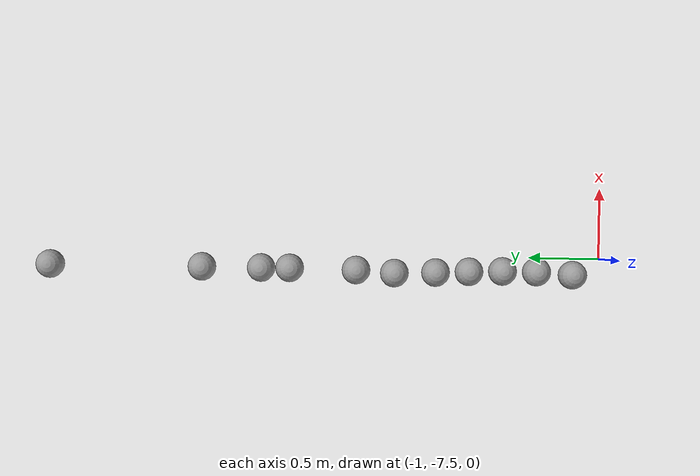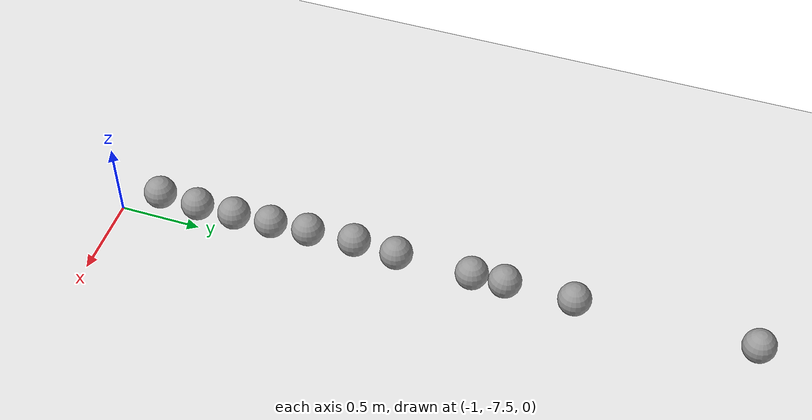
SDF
<sdf version="1.7">
 <world name="default">
  <model name="ground_plane">
   <static>1</static>
   <link name="link">
    <collision name="collision">
     <geometry><plane><normal>0 0 1</normal><size>100 100</size></plane></geometry>
     <surface>
      <contact><collide_bitmask>65535</collide_bitmask></contact>
      <friction><ode><mu>100</mu><mu2>50</mu2></ode></friction>
     </surface>
    </collision>
    <visual name="visual">
     <cast_shadows>0</cast_shadows>
     <geometry><plane><normal>0 0 1</normal><size>100 100</size></plane></geometry>
     <material>
      <script><uri>file://media/materials/scripts/gazebo.material</uri><name>Gazebo/White</name></script>
     </material>
    </visual>
   </link>
  </model>
  <model name="sphere_0">
   <link name="link_0">
    <inertial>
     <mass>1</mass>
     <inertia><ixx>0.1</ixx><ixy>0</ixy><ixz>0</ixz><iyy>0.1</iyy><iyz>0</iyz><izz>0.1</izz></inertia>
    </inertial>
    <visual name="visual">
     <geometry><sphere><radius>0.1</radius></sphere></geometry>
     <material>
      <lighting>1</lighting>
      <script><uri>file://media/materials/scripts/gazebo.material</uri><name>Gazebo/Grey</name></script>
      <shader type="pixel"><normal_map>__default__</normal_map></shader>
      <ambient>0.3 0.3 0.3 1</ambient>
      <diffuse>0.7 0.7 0.7 1</diffuse>
      <specular>0.01 0.01 0.01 1</specular>
      <emissive>0 0 0 1</emissive>
     </material>
    </visual>
    <collision name="collision">
     <geometry><sphere><radius>0.1</radius></sphere></geometry>
     <surface>
      <friction>
       <ode><mu>1</mu><mu2>1</mu2><fdir1>0 0 0</fdir1><slip1>0</slip1><slip2>0</slip2></ode>
       <torsional>
        <coefficient>1</coefficient>
        <patch_radius>0</patch_radius>
        <surface_radius>0</surface_radius>
        <use_patch_radius>1</use_patch_radius>
        <ode><slip>0</slip></ode>
       </torsional>
      </friction>
      <bounce><restitution_coefficient>0</restitution_coefficient><threshold>1e+06</threshold></bounce>
      <contact>
       <collide_without_contact>0</collide_without_contact>
       <collide_without_contact_bitmask>1</collide_without_contact_bitmask>
       <collide_bitmask>1</collide_bitmask>
       <ode>
        <soft_cfm>0</soft_cfm>
        <soft_erp>0.2</soft_erp>
        <kp>1e+13</kp>
        <kd>1</kd>
        <max_vel>0.01</max_vel>
        <min_depth>0</min_depth>
       </ode>
       <bullet>
        <split_impulse>1</split_impulse>
        <split_impulse_penetration_threshold>-0.01</split_impulse_penetration_threshold>
        <soft_cfm>0</soft_cfm>
        <soft_erp>0.2</soft_erp>
        <kp>1e+13</kp>
        <kd>1</kd>
       </bullet>
      </contact>
     </surface>
    </collision>
   </link>
   <static>0</static>
   <pose>-1.09583 -5.29189 0.1 -0.009838 -0.007419 -1.6e-05</pose>
  </model>
  <model name="sphere_1">
   <link name="link_0">
    <inertial>
     <mass>1</mass>
     <inertia><ixx>0.1</ixx><ixy>0</ixy><ixz>0</ixz><iyy>0.1</iyy><iyz>0</iyz><izz>0.1</izz></inertia>
    </inertial>
    <visual name="visual">
     <geometry><sphere><radius>0.1</radius></sphere></geometry>
     <material>
      <lighting>1</lighting>
      <script><uri>file://media/materials/scripts/gazebo.material</uri><name>Gazebo/Grey</name></script>
      <shader type="pixel"><normal_map>__default__</normal_map></shader>
      <ambient>0.3 0.3 0.3 1</ambient>
      <diffuse>0.7 0.7 0.7 1</diffuse>
      <specular>0.01 0.01 0.01 1</specular>
      <emissive>0 0 0 1</emissive>
     </material>
    </visual>
    <collision name="collision">
     <geometry><sphere><radius>0.1</radius></sphere></geometry>
     <surface>
      <friction>
       <ode><mu>1</mu><mu2>1</mu2><fdir1>0 0 0</fdir1><slip1>0</slip1><slip2>0</slip2></ode>
       <torsional>
        <coefficient>1</coefficient>
        <patch_radius>0</patch_radius>
        <surface_radius>0</surface_radius>
        <use_patch_radius>1</use_patch_radius>
        <ode><slip>0</slip></ode>
       </torsional>
      </friction>
      <bounce><restitution_coefficient>0</restitution_coefficient><threshold>1e+06</threshold></bounce>
      <contact>
       <collide_without_contact>0</collide_without_contact>
       <collide_without_contact_bitmask>1</collide_without_contact_bitmask>
       <collide_bitmask>1</collide_bitmask>
       <ode>
        <soft_cfm>0</soft_cfm>
        <soft_erp>0.2</soft_erp>
        <kp>1e+13</kp>
        <kd>1</kd>
        <max_vel>0.01</max_vel>
        <min_depth>0</min_depth>
       </ode>
       <bullet>
        <split_impulse>1</split_impulse>
        <split_impulse_penetration_threshold>-0.01</split_impulse_penetration_threshold>
        <soft_cfm>0</soft_cfm>
        <soft_erp>0.2</soft_erp>
        <kp>1e+13</kp>
        <kd>1</kd>
       </bullet>
      </contact>
     </surface>
    </collision>
   </link>
   <static>0</static>
   <pose>-1.09699 -5.09057 0.1 -0.124833 -0.004277 -0.003014</pose>
  </model>
  <model name="sphere_3">
   <link name="link_0">
    <inertial>
     <mass>1</mass>
     <inertia><ixx>0.1</ixx><ixy>0</ixy><ixz>0</ixz><iyy>0.1</iyy><iyz>0</iyz><izz>0.1</izz></inertia>
    </inertial>
    <visual name="visual">
     <geometry><sphere><radius>0.1</radius></sphere></geometry>
     <material>
      <lighting>1</lighting>
      <script><uri>file://media/materials/scripts/gazebo.material</uri><name>Gazebo/Grey</name></script>
      <shader type="pixel"><normal_map>__default__</normal_map></shader>
      <ambient>0.3 0.3 0.3 1</ambient>
      <diffuse>0.7 0.7 0.7 1</diffuse>
      <specular>0.01 0.01 0.01 1</specular>
      <emissive>0 0 0 1</emissive>
     </material>
    </visual>
    <collision name="collision">
     <geometry><sphere><radius>0.1</radius></sphere></geometry>
     <surface>
      <friction>
       <ode><mu>1</mu><mu2>1</mu2><fdir1>0 0 0</fdir1><slip1>0</slip1><slip2>0</slip2></ode>
       <torsional>
        <coefficient>1</coefficient>
        <patch_radius>0</patch_radius>
        <surface_radius>0</surface_radius>
        <use_patch_radius>1</use_patch_radius>
        <ode><slip>0</slip></ode>
       </torsional>
      </friction>
      <bounce><restitution_coefficient>0</restitution_coefficient><threshold>1e+06</threshold></bounce>
      <contact>
       <collide_without_contact>0</collide_without_contact>
       <collide_without_contact_bitmask>1</collide_without_contact_bitmask>
       <collide_bitmask>1</collide_bitmask>
       <ode>
        <soft_cfm>0</soft_cfm>
        <soft_erp>0.2</soft_erp>
        <kp>1e+13</kp>
        <kd>1</kd>
        <max_vel>0.01</max_vel>
        <min_depth>0</min_depth>
       </ode>
       <bullet>
        <split_impulse>1</split_impulse>
        <split_impulse_penetration_threshold>-0.01</split_impulse_penetration_threshold>
        <soft_cfm>0</soft_cfm>
        <soft_erp>0.2</soft_erp>
        <kp>1e+13</kp>
        <kd>1</kd>
       </bullet>
      </contact>
     </surface>
    </collision>
   </link>
   <static>0</static>
   <pose>-1.09593 -4.67195 0.1 0 -0 0</pose>
  </model>
  <model name="sphere_8">
   <link name="link_0">
    <inertial>
     <mass>1</mass>
     <inertia><ixx>0.1</ixx><ixy>0</ixy><ixz>0</ixz><iyy>0.1</iyy><iyz>0</iyz><izz>0.1</izz></inertia>
    </inertial>
    <visual name="visual">
     <geometry><sphere><radius>0.1</radius></sphere></geometry>
     <material>
      <lighting>1</lighting>
      <script><uri>file://media/materials/scripts/gazebo.material</uri><name>Gazebo/Grey</name></script>
      <shader type="pixel"><normal_map>__default__</normal_map></shader>
      <ambient>0.3 0.3 0.3 1</ambient>
      <diffuse>0.7 0.7 0.7 1</diffuse>
      <specular>0.01 0.01 0.01 1</specular>
      <emissive>0 0 0 1</emissive>
     </material>
    </visual>
    <collision name="collision">
     <geometry><sphere><radius>0.1</radius></sphere></geometry>
     <surface>
      <friction>
       <ode><mu>1</mu><mu2>1</mu2><fdir1>0 0 0</fdir1><slip1>0</slip1><slip2>0</slip2></ode>
       <torsional>
        <coefficient>1</coefficient>
        <patch_radius>0</patch_radius>
        <surface_radius>0</surface_radius>
        <use_patch_radius>1</use_patch_radius>
        <ode><slip>0</slip></ode>
       </torsional>
      </friction>
      <bounce><restitution_coefficient>0</restitution_coefficient><threshold>1e+06</threshold></bounce>
      <contact>
       <collide_without_contact>0</collide_without_contact>
       <collide_without_contact_bitmask>1</collide_without_contact_bitmask>
       <collide_bitmask>1</collide_bitmask>
       <ode>
        <soft_cfm>0</soft_cfm>
        <soft_erp>0.2</soft_erp>
        <kp>1e+13</kp>
        <kd>1</kd>
        <max_vel>0.01</max_vel>
        <min_depth>0</min_depth>
       </ode>
       <bullet>
        <split_impulse>1</split_impulse>
        <split_impulse_penetration_threshold>-0.01</split_impulse_penetration_threshold>
        <soft_cfm>0</soft_cfm>
        <soft_erp>0.2</soft_erp>
        <kp>1e+13</kp>
        <kd>1</kd>
       </bullet>
      </contact>
     </surface>
    </collision>
   </link>
   <static>0</static>
   <pose>-1.09424 -3.60094 0.1 0 -0 0</pose>
  </model>
  <model name="sphere_119">
   <link name="link_0">
    <inertial>
     <mass>1</mass>
     <inertia><ixx>0.1</ixx><ixy>0</ixy><ixz>0</ixz><iyy>0.1</iyy><iyz>0</iyz><izz>0.1</izz></inertia>
    </inertial>
    <visual name="visual">
     <geometry><sphere><radius>0.1</radius></sphere></geometry>
     <material>
      <lighting>1</lighting>
      <script><uri>file://media/materials/scripts/gazebo.material</uri><name>Gazebo/Grey</name></script>
      <shader type="pixel"><normal_map>__default__</normal_map></shader>
      <ambient>0.3 0.3 0.3 1</ambient>
      <diffuse>0.7 0.7 0.7 1</diffuse>
      <specular>0.01 0.01 0.01 1</specular>
      <emissive>0 0 0 1</emissive>
     </material>
    </visual>
    <collision name="collision">
     <geometry><sphere><radius>0.1</radius></sphere></geometry>
     <surface>
      <friction>
       <ode><mu>1</mu><mu2>1</mu2><fdir1>0 0 0</fdir1><slip1>0</slip1><slip2>0</slip2></ode>
       <torsional>
        <coefficient>1</coefficient>
        <patch_radius>0</patch_radius>
        <surface_radius>0</surface_radius>
        <use_patch_radius>1</use_patch_radius>
        <ode><slip>0</slip></ode>
       </torsional>
      </friction>
      <bounce><restitution_coefficient>0</restitution_coefficient><threshold>1e+06</threshold></bounce>
      <contact>
       <collide_without_contact>0</collide_without_contact>
       <collide_without_contact_bitmask>1</collide_without_contact_bitmask>
       <collide_bitmask>1</collide_bitmask>
       <ode>
        <soft_cfm>0</soft_cfm>
        <soft_erp>0.2</soft_erp>
        <kp>1e+13</kp>
        <kd>1</kd>
        <max_vel>0.01</max_vel>
        <min_depth>0</min_depth>
       </ode>
       <bullet>
        <split_impulse>1</split_impulse>
        <split_impulse_penetration_threshold>-0.01</split_impulse_penetration_threshold>
        <soft_cfm>0</soft_cfm>
        <soft_erp>0.2</soft_erp>
        <kp>1e+13</kp>
        <kd>1</kd>
       </bullet>
      </contact>
     </surface>
    </collision>
   </link>
   <static>0</static>
   <pose>-1.10333 -5.76113 0.1 0 -0 0</pose>
  </model>
  <model name="sphere_120">
   <link name="link_0">
    <inertial>
     <mass>1</mass>
     <inertia><ixx>0.1</ixx><ixy>0</ixy><ixz>0</ixz><iyy>0.1</iyy><iyz>0</iyz><izz>0.1</izz></inertia>
    </inertial>
    <visual name="visual">
     <geometry><sphere><radius>0.1</radius></sphere></geometry>
     <material>
      <lighting>1</lighting>
      <script><uri>file://media/materials/scripts/gazebo.material</uri><name>Gazebo/Grey</name></script>
      <shader type="pixel"><normal_map>__default__</normal_map></shader>
      <ambient>0.3 0.3 0.3 1</ambient>
      <diffuse>0.7 0.7 0.7 1</diffuse>
      <specular>0.01 0.01 0.01 1</specular>
      <emissive>0 0 0 1</emissive>
     </material>
    </visual>
    <collision name="collision">
     <geometry><sphere><radius>0.1</radius></sphere></geometry>
     <surface>
      <friction>
       <ode><mu>1</mu><mu2>1</mu2><fdir1>0 0 0</fdir1><slip1>0</slip1><slip2>0</slip2></ode>
       <torsional>
        <coefficient>1</coefficient>
        <patch_radius>0</patch_radius>
        <surface_radius>0</surface_radius>
        <use_patch_radius>1</use_patch_radius>
        <ode><slip>0</slip></ode>
       </torsional>
      </friction>
      <bounce><restitution_coefficient>0</restitution_coefficient><threshold>1e+06</threshold></bounce>
      <contact>
       <collide_without_contact>0</collide_without_contact>
       <collide_without_contact_bitmask>1</collide_without_contact_bitmask>
       <collide_bitmask>1</collide_bitmask>
       <ode>
        <soft_cfm>0</soft_cfm>
        <soft_erp>0.2</soft_erp>
        <kp>1e+13</kp>
        <kd>1</kd>
        <max_vel>0.01</max_vel>
        <min_depth>0</min_depth>
       </ode>
       <bullet>
        <split_impulse>1</split_impulse>
        <split_impulse_penetration_threshold>-0.01</split_impulse_penetration_threshold>
        <soft_cfm>0</soft_cfm>
        <soft_erp>0.2</soft_erp>
        <kp>1e+13</kp>
        <kd>1</kd>
       </bullet>
      </contact>
     </surface>
    </collision>
   </link>
   <static>0</static>
   <pose>-1.12034 -6.03239 0.1 0 -0 0</pose>
  </model>
  <model name="sphere_121">
   <link name="link_0">
    <inertial>
     <mass>1</mass>
     <inertia><ixx>0.1</ixx><ixy>0</ixy><ixz>0</ixz><iyy>0.1</iyy><iyz>0</iyz><izz>0.1</izz></inertia>
    </inertial>
    <visual name="visual">
     <geometry><sphere><radius>0.1</radius></sphere></geometry>
     <material>
      <lighting>1</lighting>
      <script><uri>file://media/materials/scripts/gazebo.material</uri><name>Gazebo/Grey</name></script>
      <shader type="pixel"><normal_map>__default__</normal_map></shader>
      <ambient>0.3 0.3 0.3 1</ambient>
      <diffuse>0.7 0.7 0.7 1</diffuse>
      <specular>0.01 0.01 0.01 1</specular>
      <emissive>0 0 0 1</emissive>
     </material>
    </visual>
    <collision name="collision">
     <geometry><sphere><radius>0.1</radius></sphere></geometry>
     <surface>
      <friction>
       <ode><mu>1</mu><mu2>1</mu2><fdir1>0 0 0</fdir1><slip1>0</slip1><slip2>0</slip2></ode>
       <torsional>
        <coefficient>1</coefficient>
        <patch_radius>0</patch_radius>
        <surface_radius>0</surface_radius>
        <use_patch_radius>1</use_patch_radius>
        <ode><slip>0</slip></ode>
       </torsional>
      </friction>
      <bounce><restitution_coefficient>0</restitution_coefficient><threshold>1e+06</threshold></bounce>
      <contact>
       <collide_without_contact>0</collide_without_contact>
       <collide_without_contact_bitmask>1</collide_without_contact_bitmask>
       <collide_bitmask>1</collide_bitmask>
       <ode>
        <soft_cfm>0</soft_cfm>
        <soft_erp>0.2</soft_erp>
        <kp>1e+13</kp>
        <kd>1</kd>
        <max_vel>0.01</max_vel>
        <min_depth>0</min_depth>
       </ode>
       <bullet>
        <split_impulse>1</split_impulse>
        <split_impulse_penetration_threshold>-0.01</split_impulse_penetration_threshold>
        <soft_cfm>0</soft_cfm>
        <soft_erp>0.2</soft_erp>
        <kp>1e+13</kp>
        <kd>1</kd>
       </bullet>
      </contact>
     </surface>
    </collision>
   </link>
   <static>0</static>
   <pose>-1.11173 -6.32301 0.1 0 -0 0</pose>
  </model>
  <model name="sphere_122">
   <link name="link_0">
    <inertial>
     <mass>1</mass>
     <inertia><ixx>0.1</ixx><ixy>0</ixy><ixz>0</ixz><iyy>0.1</iyy><iyz>0</iyz><izz>0.1</izz></inertia>
    </inertial>
    <visual name="visual">
     <geometry><sphere><radius>0.1</radius></sphere></geometry>
     <material>
      <lighting>1</lighting>
      <script><uri>file://media/materials/scripts/gazebo.material</uri><name>Gazebo/Grey</name></script>
      <shader type="pixel"><normal_map>__default__</normal_map></shader>
      <ambient>0.3 0.3 0.3 1</ambient>
      <diffuse>0.7 0.7 0.7 1</diffuse>
      <specular>0.01 0.01 0.01 1</specular>
      <emissive>0 0 0 1</emissive>
     </material>
    </visual>
    <collision name="collision">
     <geometry><sphere><radius>0.1</radius></sphere></geometry>
     <surface>
      <friction>
       <ode><mu>1</mu><mu2>1</mu2><fdir1>0 0 0</fdir1><slip1>0</slip1><slip2>0</slip2></ode>
       <torsional>
        <coefficient>1</coefficient>
        <patch_radius>0</patch_radius>
        <surface_radius>0</surface_radius>
        <use_patch_radius>1</use_patch_radius>
        <ode><slip>0</slip></ode>
       </torsional>
      </friction>
      <bounce><restitution_coefficient>0</restitution_coefficient><threshold>1e+06</threshold></bounce>
      <contact>
       <collide_without_contact>0</collide_without_contact>
       <collide_without_contact_bitmask>1</collide_without_contact_bitmask>
       <collide_bitmask>1</collide_bitmask>
       <ode>
        <soft_cfm>0</soft_cfm>
        <soft_erp>0.2</soft_erp>
        <kp>1e+13</kp>
        <kd>1</kd>
        <max_vel>0.01</max_vel>
        <min_depth>0</min_depth>
       </ode>
       <bullet>
        <split_impulse>1</split_impulse>
        <split_impulse_penetration_threshold>-0.01</split_impulse_penetration_threshold>
        <soft_cfm>0</soft_cfm>
        <soft_erp>0.2</soft_erp>
        <kp>1e+13</kp>
        <kd>1</kd>
       </bullet>
      </contact>
     </surface>
    </collision>
   </link>
   <static>0</static>
   <pose>-1.10205 -6.55931 0.1 0 -0 0</pose>
  </model>
  <model name="sphere_123">
   <link name="link_0">
    <inertial>
     <mass>1</mass>
     <inertia><ixx>0.1</ixx><ixy>0</ixy><ixz>0</ixz><iyy>0.1</iyy><iyz>0</iyz><izz>0.1</izz></inertia>
    </inertial>
    <visual name="visual">
     <geometry><sphere><radius>0.1</radius></sphere></geometry>
     <material>
      <lighting>1</lighting>
      <script><uri>file://media/materials/scripts/gazebo.material</uri><name>Gazebo/Grey</name></script>
      <shader type="pixel"><normal_map>__default__</normal_map></shader>
      <ambient>0.3 0.3 0.3 1</ambient>
      <diffuse>0.7 0.7 0.7 1</diffuse>
      <specular>0.01 0.01 0.01 1</specular>
      <emissive>0 0 0 1</emissive>
     </material>
    </visual>
    <collision name="collision">
     <geometry><sphere><radius>0.1</radius></sphere></geometry>
     <surface>
      <friction>
       <ode><mu>1</mu><mu2>1</mu2><fdir1>0 0 0</fdir1><slip1>0</slip1><slip2>0</slip2></ode>
       <torsional>
        <coefficient>1</coefficient>
        <patch_radius>0</patch_radius>
        <surface_radius>0</surface_radius>
        <use_patch_radius>1</use_patch_radius>
        <ode><slip>0</slip></ode>
       </torsional>
      </friction>
      <bounce><restitution_coefficient>0</restitution_coefficient><threshold>1e+06</threshold></bounce>
      <contact>
       <collide_without_contact>0</collide_without_contact>
       <collide_without_contact_bitmask>1</collide_without_contact_bitmask>
       <collide_bitmask>1</collide_bitmask>
       <ode>
        <soft_cfm>0</soft_cfm>
        <soft_erp>0.2</soft_erp>
        <kp>1e+13</kp>
        <kd>1</kd>
        <max_vel>0.01</max_vel>
        <min_depth>0</min_depth>
       </ode>
       <bullet>
        <split_impulse>1</split_impulse>
        <split_impulse_penetration_threshold>-0.01</split_impulse_penetration_threshold>
        <soft_cfm>0</soft_cfm>
        <soft_erp>0.2</soft_erp>
        <kp>1e+13</kp>
        <kd>1</kd>
       </bullet>
      </contact>
     </surface>
    </collision>
   </link>
   <static>0</static>
   <pose>-1.09564 -6.79561 0.1 0 -0 0</pose>
  </model>
  <model name="sphere_124">
   <link name="link_0">
    <inertial>
     <mass>1</mass>
     <inertia><ixx>0.1</ixx><ixy>0</ixy><ixz>0</ixz><iyy>0.1</iyy><iyz>0</iyz><izz>0.1</izz></inertia>
    </inertial>
    <visual name="visual">
     <geometry><sphere><radius>0.1</radius></sphere></geometry>
     <material>
      <lighting>1</lighting>
      <script><uri>file://media/materials/scripts/gazebo.material</uri><name>Gazebo/Grey</name></script>
      <shader type="pixel"><normal_map>__default__</normal_map></shader>
      <ambient>0.3 0.3 0.3 1</ambient>
      <diffuse>0.7 0.7 0.7 1</diffuse>
      <specular>0.01 0.01 0.01 1</specular>
      <emissive>0 0 0 1</emissive>
     </material>
    </visual>
    <collision name="collision">
     <geometry><sphere><radius>0.1</radius></sphere></geometry>
     <surface>
      <friction>
       <ode><mu>1</mu><mu2>1</mu2><fdir1>0 0 0</fdir1><slip1>0</slip1><slip2>0</slip2></ode>
       <torsional>
        <coefficient>1</coefficient>
        <patch_radius>0</patch_radius>
        <surface_radius>0</surface_radius>
        <use_patch_radius>1</use_patch_radius>
        <ode><slip>0</slip></ode>
       </torsional>
      </friction>
      <bounce><restitution_coefficient>0</restitution_coefficient><threshold>1e+06</threshold></bounce>
      <contact>
       <collide_without_contact>0</collide_without_contact>
       <collide_without_contact_bitmask>1</collide_without_contact_bitmask>
       <collide_bitmask>1</collide_bitmask>
       <ode>
        <soft_cfm>0</soft_cfm>
        <soft_erp>0.2</soft_erp>
        <kp>1e+13</kp>
        <kd>1</kd>
        <max_vel>0.01</max_vel>
        <min_depth>0</min_depth>
       </ode>
       <bullet>
        <split_impulse>1</split_impulse>
        <split_impulse_penetration_threshold>-0.01</split_impulse_penetration_threshold>
        <soft_cfm>0</soft_cfm>
        <soft_erp>0.2</soft_erp>
        <kp>1e+13</kp>
        <kd>1</kd>
       </bullet>
      </contact>
     </surface>
    </collision>
   </link>
   <static>0</static>
   <pose>-1.0961 -7.03559 0.1 0 -0 0</pose>
  </model>
  <model name="sphere_125">
   <link name="link_0">
    <inertial>
     <mass>1</mass>
     <inertia><ixx>0.1</ixx><ixy>0</ixy><ixz>0</ixz><iyy>0.1</iyy><iyz>0</iyz><izz>0.1</izz></inertia>
    </inertial>
    <visual name="visual">
     <geometry><sphere><radius>0.1</radius></sphere></geometry>
     <material>
      <lighting>1</lighting>
      <script><uri>file://media/materials/scripts/gazebo.material</uri><name>Gazebo/Grey</name></script>
      <shader type="pixel"><normal_map>__default__</normal_map></shader>
      <ambient>0.3 0.3 0.3 1</ambient>
      <diffuse>0.7 0.7 0.7 1</diffuse>
      <specular>0.01 0.01 0.01 1</specular>
      <emissive>0 0 0 1</emissive>
     </material>
    </visual>
    <collision name="collision">
     <geometry><sphere><radius>0.1</radius></sphere></geometry>
     <surface>
      <friction>
       <ode><mu>1</mu><mu2>1</mu2><fdir1>0 0 0</fdir1><slip1>0</slip1><slip2>0</slip2></ode>
       <torsional>
        <coefficient>1</coefficient>
        <patch_radius>0</patch_radius>
        <surface_radius>0</surface_radius>
        <use_patch_radius>1</use_patch_radius>
        <ode><slip>0</slip></ode>
       </torsional>
      </friction>
      <bounce><restitution_coefficient>0</restitution_coefficient><threshold>1e+06</threshold></bounce>
      <contact>
       <collide_without_contact>0</collide_without_contact>
       <collide_without_contact_bitmask>1</collide_without_contact_bitmask>
       <collide_bitmask>1</collide_bitmask>
       <ode>
        <soft_cfm>0</soft_cfm>
        <soft_erp>0.2</soft_erp>
        <kp>1e+13</kp>
        <kd>1</kd>
        <max_vel>0.01</max_vel>
        <min_depth>0</min_depth>
       </ode>
       <bullet>
        <split_impulse>1</split_impulse>
        <split_impulse_penetration_threshold>-0.01</split_impulse_penetration_threshold>
        <soft_cfm>0</soft_cfm>
        <soft_erp>0.2</soft_erp>
        <kp>1e+13</kp>
        <kd>1</kd>
       </bullet>
      </contact>
     </surface>
    </collision>
   </link>
   <static>0</static>
   <pose>-1.11354 -7.28993 0.1 0 -0 0</pose>
  </model>
 </world>
</sdf>
